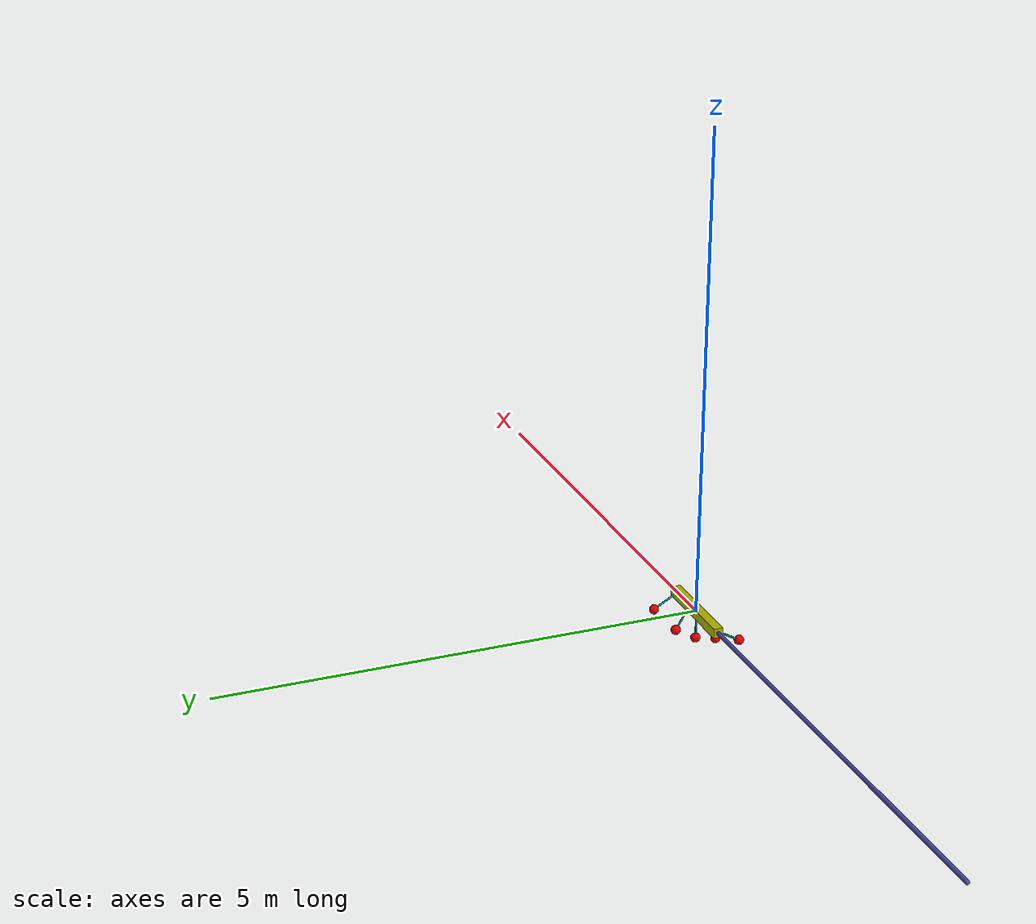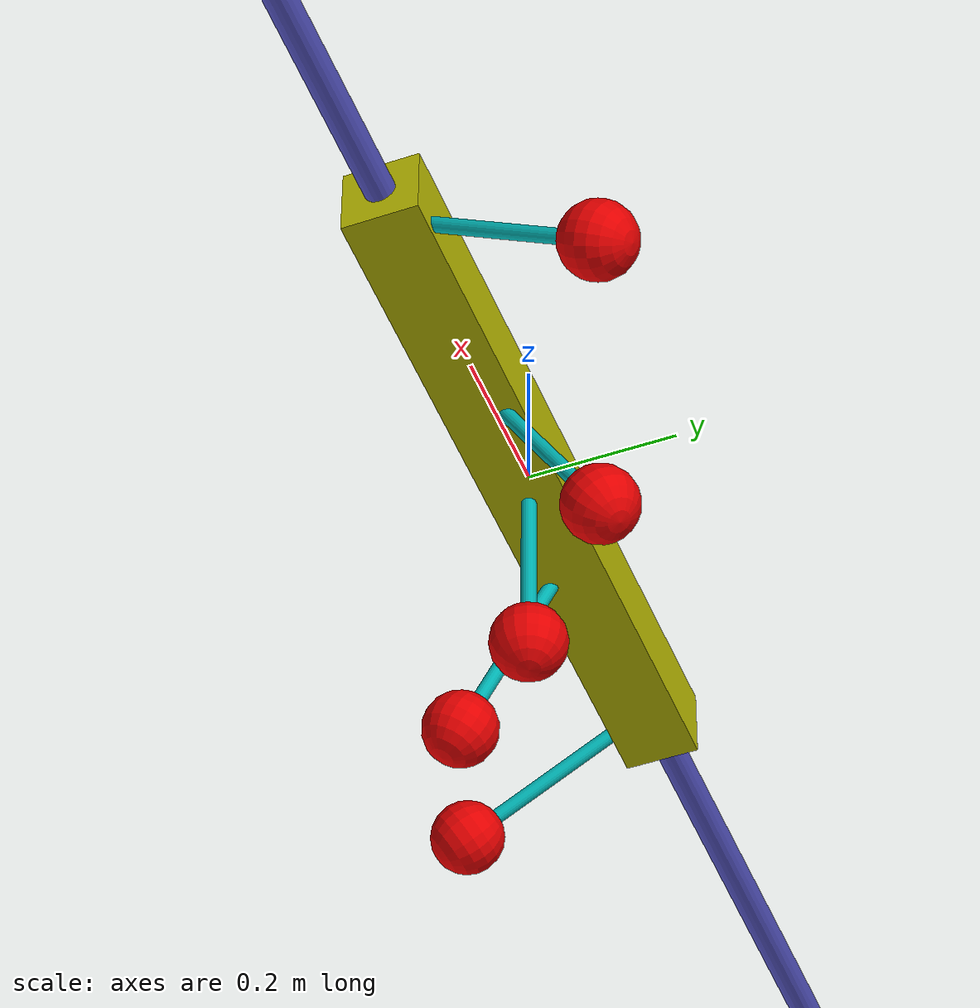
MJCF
<mujoco model="pendulum v1">
	<compiler inertiafromgeom="true"/>
	<default>
		<joint armature="0" damping="0" limited="true" />
		<!--friction=[滑り摩擦，ねじり摩擦，転がり摩擦]-->
		<geom contype="0" rgba="0.7 0.7 0 1" friction="0 0 0" condim="1"/>
		<tendon/>
		<motor ctrlrange="-3 3"/>
	</default>
	<option gravity="0 0 -9.81" integrator="RK4" timestep="0.02"/>
	<size nstack="3000"/>
	<worldbody>
		<geom name="rail" pos="0 0 0" quat="0.707 0 0.707 0" rgba="0.3 0.3 0.7 1" size="0.02 5" type="capsule"/>
		<body name="cart" pos="0 0 0" >
			<joint axis="1 0 0" damping="1" limited="true" name="slider" pos="0 0 0" range="-1 1" type="slide" frictionloss="0"/>
			<geom name="cart" pos="0 0 0" quat="0.707 0 0.707 0" size="0.05 0.05 .5" type="box" density="500"/>

			<body name="pole1" pos="-0.45 0 0" euler="-60 0 0">
				<joint axis="1 0 0" name="hinge1" pos="0.5 0 0" range="-180 180" type="hinge"/>
				<geom pos="0 0 -0.15" name="cpole1" rgba="0 0.7 0.7 1" size="0.01 0.15" type="capsule" />
				<body name="toe1" pos="0 0 -0.15"/>
					<geom pos="0 0 -0.3" name="ball1" size="0.05" rgba="0.9 0 0 1" type="sphere" density="1000"/> <!--sphereのサイズは半径指定-->
			</body>
			<body name="pole2" pos="-0.15 0 0" euler="-30 0 0">
				<joint axis="1 0 0" name="hinge2" pos="0.5 0 0" range="-180 180" type="hinge"/>
				<geom pos="0 0 -0.15" name="cpole2" rgba="0 0.7 0.7 1" size="0.01 0.15" type="capsule" />
				<body name="toe2" pos="0 0 -0.15"/>
					<geom pos="0 0 -.3" name="ball2" size="0.05 0.05" rgba="0.9 0 0 1" type="sphere" density="1000"/>
			</body>
			<body name="pole3" pos="0 0 0" euler="0 0 0">
				<joint axis="1 0 0" name="hinge3" pos="0.5 0 0" range="-180 180" type="hinge"/>
				<geom pos="0 0 -0.15" name="cpole3" rgba="0 0.7 0.7 1" size="0.01 0.15" type="capsule" />
				<body name="toe3" pos="0 0 -0.15"/>
					<geom pos="0 0 -.3" name="ball3" size="0.05 0.05" rgba="0.9 0 0 1" type="sphere" density="1000"/>
			</body>

			<body name="pole4" pos="0.15 0 0" euler="30 0 0">
				<joint axis="1 0 0" name="hinge4" pos="0.5 0 0" range="-180 180" type="hinge"/>
				<geom pos="0 0 -0.15" name="cpole4" rgba="0 0.7 0.7 1" size="0.01 0.15" type="capsule" />
				<body name="toe4" pos="0 0 -0.15"/>
					<geom pos="0 0 -.3" name="ball4" size="0.05 0.05" rgba="0.9 0 0 1" type="sphere" density="1000"/>
			</body>
			<body name="pole5" pos="0.45 0 0" euler="60 0 0">
				<joint axis="1 0 0" name="hinge5" pos="0.5 0 0" range="-180 180" type="hinge"/>
				<geom pos="0 0 -0.15" name="cpole5" rgba="0 0.7 0.7 1" size="0.01 0.15" type="capsule" />
				<body name="toe5" pos="0 0 -0.15"/>
					<geom pos="0 0 -.3" name="ball5" size="0.05 0.05" rgba="0.9 0 0 1" type="sphere" density="1000"/>
			</body>

		</body>
	</worldbody>
	<actuator>
		<motor gear="1000" joint="slider" name="slide"/>
	</actuator>
</mujoco>
